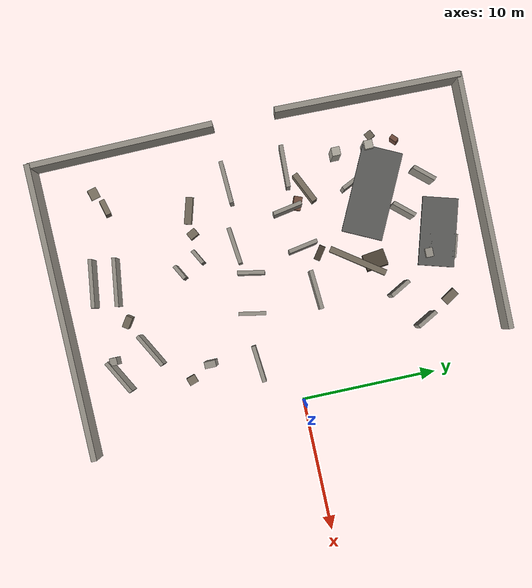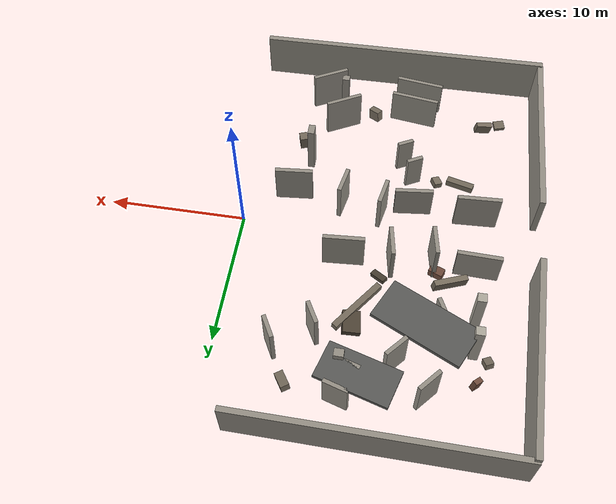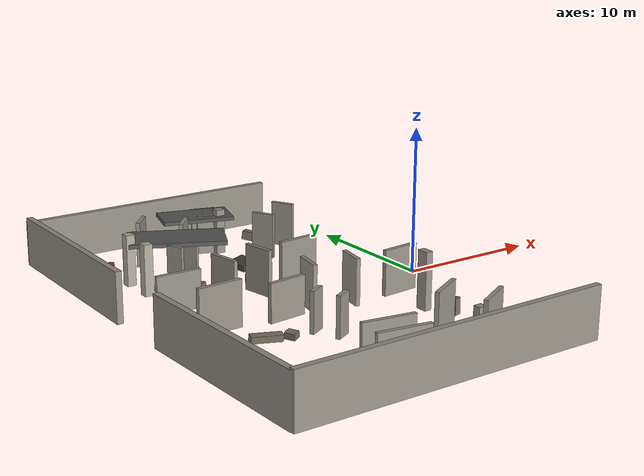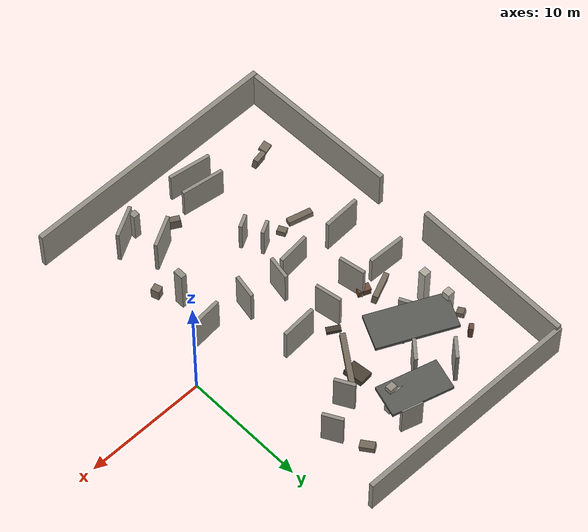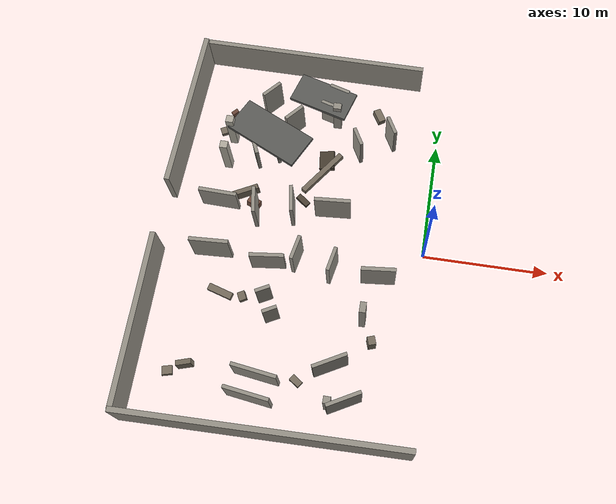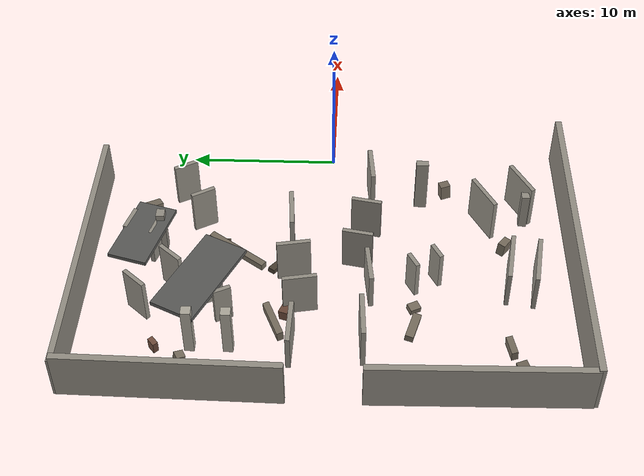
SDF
<sdf version="1.6">
 <model name="ruins_urban_01_base">
  <static>true</static>
  <link name="001_north_boundary_west">
   <pose>-11.50000 15.85000 1.55000 0.00000 0.00000 -0.01000</pose>
   <visual name="visual">
    <geometry><box><size>19.00000 0.38000 3.10000</size></box></geometry>
    <material>
     <ambient>0.580 0.560 0.520 1</ambient>
     <diffuse>0.580 0.560 0.520 1</diffuse>
     <specular>0.03 0.03 0.03 1</specular>
    </material>
   </visual>
   <collision name="collision">
    <geometry><box><size>19.00000 0.38000 3.10000</size></box></geometry>
    <surface>
     <contact><collide_bitmask>0x01</collide_bitmask></contact>
     <friction><ode><mu>1.0</mu><mu2>1.0</mu2></ode></friction>
    </surface>
   </collision>
  </link>
  <link name="003_south_boundary_west">
   <pose>-10.00000 -15.90000 1.75000 0.00000 0.00000 0.01200</pose>
   <visual name="visual">
    <geometry><box><size>22.00000 0.42000 3.50000</size></box></geometry>
    <material>
     <ambient>0.580 0.560 0.520 1</ambient>
     <diffuse>0.580 0.560 0.520 1</diffuse>
     <specular>0.03 0.03 0.03 1</specular>
    </material>
   </visual>
   <collision name="collision">
    <geometry><box><size>22.00000 0.42000 3.50000</size></box></geometry>
    <surface>
     <contact><collide_bitmask>0x01</collide_bitmask></contact>
     <friction><ode><mu>1.0</mu><mu2>1.0</mu2></ode></friction>
    </surface>
   </collision>
  </link>
  <link name="005_west_boundary_north">
   <pose>-20.95000 9.15000 1.70000 0.00000 0.00000 -0.02000</pose>
   <visual name="visual">
    <geometry><box><size>0.42000 13.70000 3.40000</size></box></geometry>
    <material>
     <ambient>0.580 0.560 0.520 1</ambient>
     <diffuse>0.580 0.560 0.520 1</diffuse>
     <specular>0.03 0.03 0.03 1</specular>
    </material>
   </visual>
   <collision name="collision">
    <geometry><box><size>0.42000 13.70000 3.40000</size></box></geometry>
    <surface>
     <contact><collide_bitmask>0x01</collide_bitmask></contact>
     <friction><ode><mu>1.0</mu><mu2>1.0</mu2></ode></friction>
    </surface>
   </collision>
  </link>
  <link name="006_west_boundary_south">
   <pose>-20.95000 -9.15000 1.70000 0.00000 0.00000 0.01500</pose>
   <visual name="visual">
    <geometry><box><size>0.42000 13.70000 3.40000</size></box></geometry>
    <material>
     <ambient>0.580 0.560 0.520 1</ambient>
     <diffuse>0.580 0.560 0.520 1</diffuse>
     <specular>0.03 0.03 0.03 1</specular>
    </material>
   </visual>
   <collision name="collision">
    <geometry><box><size>0.42000 13.70000 3.40000</size></box></geometry>
    <surface>
     <contact><collide_bitmask>0x01</collide_bitmask></contact>
     <friction><ode><mu>1.0</mu><mu2>1.0</mu2></ode></friction>
    </surface>
   </collision>
  </link>
  <link name="008_ground_corridor_g2_n1_left">
   <pose>-13.96680 1.73807 1.57500 0.00000 0.00000 1.74751</pose>
   <visual name="visual">
    <geometry><box><size>2.18859 0.28000 3.15000</size></box></geometry>
    <material>
     <ambient>0.580 0.560 0.520 1</ambient>
     <diffuse>0.580 0.560 0.520 1</diffuse>
     <specular>0.03 0.03 0.03 1</specular>
    </material>
   </visual>
   <collision name="collision">
    <geometry><box><size>2.18859 0.28000 3.15000</size></box></geometry>
    <surface>
     <contact><collide_bitmask>0x01</collide_bitmask></contact>
     <friction><ode><mu>1.0</mu><mu2>1.0</mu2></ode></friction>
    </surface>
   </collision>
  </link>
  <link name="009_ground_corridor_g2_n1_right">
   <pose>-11.03320 2.26193 1.57500 0.00000 0.00000 1.74751</pose>
   <visual name="visual">
    <geometry><box><size>2.18859 0.28000 3.15000</size></box></geometry>
    <material>
     <ambient>0.580 0.560 0.520 1</ambient>
     <diffuse>0.580 0.560 0.520 1</diffuse>
     <specular>0.03 0.03 0.03 1</specular>
    </material>
   </visual>
   <collision name="collision">
    <geometry><box><size>2.18859 0.28000 3.15000</size></box></geometry>
    <surface>
     <contact><collide_bitmask>0x01</collide_bitmask></contact>
     <friction><ode><mu>1.0</mu><mu2>1.0</mu2></ode></friction>
    </surface>
   </collision>
  </link>
  <link name="010_ground_corridor_n1_n2_left">
   <pose>-14.78097 6.52811 1.37500 0.00000 0.00000 2.01522</pose>
   <visual name="visual">
    <geometry><box><size>1.15188 0.28000 2.75000</size></box></geometry>
    <material>
     <ambient>0.580 0.560 0.520 1</ambient>
     <diffuse>0.580 0.560 0.520 1</diffuse>
     <specular>0.03 0.03 0.03 1</specular>
    </material>
   </visual>
   <collision name="collision">
    <geometry><box><size>1.15188 0.28000 2.75000</size></box></geometry>
    <surface>
     <contact><collide_bitmask>0x01</collide_bitmask></contact>
     <friction><ode><mu>1.0</mu><mu2>1.0</mu2></ode></friction>
    </surface>
   </collision>
  </link>
  <link name="011_ground_corridor_n1_n2_right">
   <pose>-13.21903 7.27189 1.37500 0.00000 0.00000 2.01522</pose>
   <visual name="visual">
    <geometry><box><size>1.15188 0.28000 2.75000</size></box></geometry>
    <material>
     <ambient>0.580 0.560 0.520 1</ambient>
     <diffuse>0.580 0.560 0.520 1</diffuse>
     <specular>0.03 0.03 0.03 1</specular>
    </material>
   </visual>
   <collision name="collision">
    <geometry><box><size>1.15188 0.28000 2.75000</size></box></geometry>
    <surface>
     <contact><collide_bitmask>0x01</collide_bitmask></contact>
     <friction><ode><mu>1.0</mu><mu2>1.0</mu2></ode></friction>
    </surface>
   </collision>
  </link>
  <link name="012_ground_corridor_n2_n3_left">
   <pose>-14.37134 11.98117 1.57500 0.00000 0.00000 0.85197</pose>
   <visual name="visual">
    <geometry><box><size>1.81507 0.28000 3.15000</size></box></geometry>
    <material>
     <ambient>0.580 0.560 0.520 1</ambient>
     <diffuse>0.580 0.560 0.520 1</diffuse>
     <specular>0.03 0.03 0.03 1</specular>
    </material>
   </visual>
   <collision name="collision">
    <geometry><box><size>1.81507 0.28000 3.15000</size></box></geometry>
    <surface>
     <contact><collide_bitmask>0x01</collide_bitmask></contact>
     <friction><ode><mu>1.0</mu><mu2>1.0</mu2></ode></friction>
    </surface>
   </collision>
  </link>
  <link name="013_ground_corridor_n2_n3_right">
   <pose>-12.12866 10.01883 1.57500 0.00000 0.00000 0.85197</pose>
   <visual name="visual">
    <geometry><box><size>1.81507 0.28000 3.15000</size></box></geometry>
    <material>
     <ambient>0.580 0.560 0.520 1</ambient>
     <diffuse>0.580 0.560 0.520 1</diffuse>
     <specular>0.03 0.03 0.03 1</specular>
    </material>
   </visual>
   <collision name="collision">
    <geometry><box><size>1.81507 0.28000 3.15000</size></box></geometry>
    <surface>
     <contact><collide_bitmask>0x01</collide_bitmask></contact>
     <friction><ode><mu>1.0</mu><mu2>1.0</mu2></ode></friction>
    </surface>
   </collision>
  </link>
  <link name="014_ground_corridor_n3_n4_left">
   <pose>-8.75144 13.07852 1.37500 0.00000 0.00000 -0.29146</pose>
   <visual name="visual">
    <geometry><box><size>1.72015 0.28000 2.75000</size></box></geometry>
    <material>
     <ambient>0.580 0.560 0.520 1</ambient>
     <diffuse>0.580 0.560 0.520 1</diffuse>
     <specular>0.03 0.03 0.03 1</specular>
    </material>
   </visual>
   <collision name="collision">
    <geometry><box><size>1.72015 0.28000 2.75000</size></box></geometry>
    <surface>
     <contact><collide_bitmask>0x01</collide_bitmask></contact>
     <friction><ode><mu>1.0</mu><mu2>1.0</mu2></ode></friction>
    </surface>
   </collision>
  </link>
  <link name="015_ground_corridor_n3_n4_right">
   <pose>-9.24856 11.42148 1.37500 0.00000 0.00000 -0.29146</pose>
   <visual name="visual">
    <geometry><box><size>1.72015 0.28000 2.75000</size></box></geometry>
    <material>
     <ambient>0.580 0.560 0.520 1</ambient>
     <diffuse>0.580 0.560 0.520 1</diffuse>
     <specular>0.03 0.03 0.03 1</specular>
    </material>
   </visual>
   <collision name="collision">
    <geometry><box><size>1.72015 0.28000 2.75000</size></box></geometry>
    <surface>
     <contact><collide_bitmask>0x01</collide_bitmask></contact>
     <friction><ode><mu>1.0</mu><mu2>1.0</mu2></ode></friction>
    </surface>
   </collision>
  </link>
  <link name="016_ground_corridor_n4_n5_left">
   <pose>-3.94751 9.97361 1.57500 0.00000 0.00000 -1.06370</pose>
   <visual name="visual">
    <geometry><box><size>1.64782 0.28000 3.15000</size></box></geometry>
    <material>
     <ambient>0.580 0.560 0.520 1</ambient>
     <diffuse>0.580 0.560 0.520 1</diffuse>
     <specular>0.03 0.03 0.03 1</specular>
    </material>
   </visual>
   <collision name="collision">
    <geometry><box><size>1.64782 0.28000 3.15000</size></box></geometry>
    <surface>
     <contact><collide_bitmask>0x01</collide_bitmask></contact>
     <friction><ode><mu>1.0</mu><mu2>1.0</mu2></ode></friction>
    </surface>
   </collision>
  </link>
  <link name="017_ground_corridor_n4_n5_right">
   <pose>-6.55249 8.52639 1.57500 0.00000 0.00000 -1.06370</pose>
   <visual name="visual">
    <geometry><box><size>1.64782 0.28000 3.15000</size></box></geometry>
    <material>
     <ambient>0.580 0.560 0.520 1</ambient>
     <diffuse>0.580 0.560 0.520 1</diffuse>
     <specular>0.03 0.03 0.03 1</specular>
    </material>
   </visual>
   <collision name="collision">
    <geometry><box><size>1.64782 0.28000 3.15000</size></box></geometry>
    <surface>
     <contact><collide_bitmask>0x01</collide_bitmask></contact>
     <friction><ode><mu>1.0</mu><mu2>1.0</mu2></ode></friction>
    </surface>
   </collision>
  </link>
  <link name="018_ground_corridor_g3_s1_left">
   <pose>-7.03491 -2.37131 1.57500 0.00000 0.00000 -1.75391</pose>
   <visual name="visual">
    <geometry><box><size>1.99181 0.28000 3.15000</size></box></geometry>
    <material>
     <ambient>0.580 0.560 0.520 1</ambient>
     <diffuse>0.580 0.560 0.520 1</diffuse>
     <specular>0.03 0.03 0.03 1</specular>
    </material>
   </visual>
   <collision name="collision">
    <geometry><box><size>1.99181 0.28000 3.15000</size></box></geometry>
    <surface>
     <contact><collide_bitmask>0x01</collide_bitmask></contact>
     <friction><ode><mu>1.0</mu><mu2>1.0</mu2></ode></friction>
    </surface>
   </collision>
  </link>
  <link name="019_ground_corridor_g3_s1_right">
   <pose>-9.96509 -1.82869 1.57500 0.00000 0.00000 -1.75391</pose>
   <visual name="visual">
    <geometry><box><size>1.99181 0.28000 3.15000</size></box></geometry>
    <material>
     <ambient>0.580 0.560 0.520 1</ambient>
     <diffuse>0.580 0.560 0.520 1</diffuse>
     <specular>0.03 0.03 0.03 1</specular>
    </material>
   </visual>
   <collision name="collision">
    <geometry><box><size>1.99181 0.28000 3.15000</size></box></geometry>
    <surface>
     <contact><collide_bitmask>0x01</collide_bitmask></contact>
     <friction><ode><mu>1.0</mu><mu2>1.0</mu2></ode></friction>
    </surface>
   </collision>
  </link>
  <link name="020_ground_corridor_s1_s2_left">
   <pose>-11.08900 -6.91112 1.37500 0.00000 0.00000 -2.64646</pose>
   <visual name="visual">
    <geometry><box><size>1.18243 0.28000 2.75000</size></box></geometry>
    <material>
     <ambient>0.580 0.560 0.520 1</ambient>
     <diffuse>0.580 0.560 0.520 1</diffuse>
     <specular>0.03 0.03 0.03 1</specular>
    </material>
   </visual>
   <collision name="collision">
    <geometry><box><size>1.18243 0.28000 2.75000</size></box></geometry>
    <surface>
     <contact><collide_bitmask>0x01</collide_bitmask></contact>
     <friction><ode><mu>1.0</mu><mu2>1.0</mu2></ode></friction>
    </surface>
   </collision>
  </link>
  <link name="021_ground_corridor_s1_s2_right">
   <pose>-11.91100 -5.38888 1.37500 0.00000 0.00000 -2.64646</pose>
   <visual name="visual">
    <geometry><box><size>1.18243 0.28000 2.75000</size></box></geometry>
    <material>
     <ambient>0.580 0.560 0.520 1</ambient>
     <diffuse>0.580 0.560 0.520 1</diffuse>
     <specular>0.03 0.03 0.03 1</specular>
    </material>
   </visual>
   <collision name="collision">
    <geometry><box><size>1.18243 0.28000 2.75000</size></box></geometry>
    <surface>
     <contact><collide_bitmask>0x01</collide_bitmask></contact>
     <friction><ode><mu>1.0</mu><mu2>1.0</mu2></ode></friction>
    </surface>
   </collision>
  </link>
  <link name="022_ground_corridor_s3_s4_left">
   <pose>-11.37767 -11.64369 1.37500 0.00000 0.00000 -0.14190</pose>
   <visual name="visual">
    <geometry><box><size>3.57107 0.28000 2.75000</size></box></geometry>
    <material>
     <ambient>0.580 0.560 0.520 1</ambient>
     <diffuse>0.580 0.560 0.520 1</diffuse>
     <specular>0.03 0.03 0.03 1</specular>
    </material>
   </visual>
   <collision name="collision">
    <geometry><box><size>3.57107 0.28000 2.75000</size></box></geometry>
    <surface>
     <contact><collide_bitmask>0x01</collide_bitmask></contact>
     <friction><ode><mu>1.0</mu><mu2>1.0</mu2></ode></friction>
    </surface>
   </collision>
  </link>
  <link name="023_ground_corridor_s3_s4_right">
   <pose>-11.62233 -13.35631 1.37500 0.00000 0.00000 -0.14190</pose>
   <visual name="visual">
    <geometry><box><size>3.57107 0.28000 2.75000</size></box></geometry>
    <material>
     <ambient>0.580 0.560 0.520 1</ambient>
     <diffuse>0.580 0.560 0.520 1</diffuse>
     <specular>0.03 0.03 0.03 1</specular>
    </material>
   </visual>
   <collision name="collision">
    <geometry><box><size>3.57107 0.28000 2.75000</size></box></geometry>
    <surface>
     <contact><collide_bitmask>0x01</collide_bitmask></contact>
     <friction><ode><mu>1.0</mu><mu2>1.0</mu2></ode></friction>
    </surface>
   </collision>
  </link>
  <link name="024_ground_corridor_s4_s5_left">
   <pose>-5.96349 -10.19194 1.57500 0.00000 0.00000 0.49935</pose>
   <visual name="visual">
    <geometry><box><size>2.76498 0.28000 3.15000</size></box></geometry>
    <material>
     <ambient>0.580 0.560 0.520 1</ambient>
     <diffuse>0.580 0.560 0.520 1</diffuse>
     <specular>0.03 0.03 0.03 1</specular>
    </material>
   </visual>
   <collision name="collision">
    <geometry><box><size>2.76498 0.28000 3.15000</size></box></geometry>
    <surface>
     <contact><collide_bitmask>0x01</collide_bitmask></contact>
     <friction><ode><mu>1.0</mu><mu2>1.0</mu2></ode></friction>
    </surface>
   </collision>
  </link>
  <link name="025_ground_corridor_s4_s5_right">
   <pose>-4.53651 -12.80806 1.57500 0.00000 0.00000 0.49935</pose>
   <visual name="visual">
    <geometry><box><size>2.76498 0.28000 3.15000</size></box></geometry>
    <material>
     <ambient>0.580 0.560 0.520 1</ambient>
     <diffuse>0.580 0.560 0.520 1</diffuse>
     <specular>0.03 0.03 0.03 1</specular>
    </material>
   </visual>
   <collision name="collision">
    <geometry><box><size>2.76498 0.28000 3.15000</size></box></geometry>
    <surface>
     <contact><collide_bitmask>0x01</collide_bitmask></contact>
     <friction><ode><mu>1.0</mu><mu2>1.0</mu2></ode></friction>
    </surface>
   </collision>
  </link>
  <link name="026_spine_broken_panel_00">
   <pose>-17.05000 2.20000 1.30000 0.00000 0.00000 -0.03225</pose>
   <visual name="visual">
    <geometry><box><size>3.10161 0.30000 2.60000</size></box></geometry>
    <material>
     <ambient>0.580 0.560 0.520 1</ambient>
     <diffuse>0.580 0.560 0.520 1</diffuse>
     <specular>0.03 0.03 0.03 1</specular>
    </material>
   </visual>
   <collision name="collision">
    <geometry><box><size>3.10161 0.30000 2.60000</size></box></geometry>
    <surface>
     <contact><collide_bitmask>0x01</collide_bitmask></contact>
     <friction><ode><mu>1.0</mu><mu2>1.0</mu2></ode></friction>
    </surface>
   </collision>
  </link>
  <link name="027_spine_broken_panel_02">
   <pose>-7.75000 2.55000 1.55000 0.00000 0.00000 0.06886</pose>
   <visual name="visual">
    <geometry><box><size>2.90689 0.30000 3.10000</size></box></geometry>
    <material>
     <ambient>0.580 0.560 0.520 1</ambient>
     <diffuse>0.580 0.560 0.520 1</diffuse>
     <specular>0.03 0.03 0.03 1</specular>
    </material>
   </visual>
   <collision name="collision">
    <geometry><box><size>2.90689 0.30000 3.10000</size></box></geometry>
    <surface>
     <contact><collide_bitmask>0x01</collide_bitmask></contact>
     <friction><ode><mu>1.0</mu><mu2>1.0</mu2></ode></friction>
    </surface>
   </collision>
  </link>
  <link name="032_spine_broken_panel_08">
   <pose>-16.75000 -2.22500 1.55000 0.00000 0.00000 0.04835</pose>
   <visual name="visual">
    <geometry><box><size>3.10363 0.30000 3.10000</size></box></geometry>
    <material>
     <ambient>0.580 0.560 0.520 1</ambient>
     <diffuse>0.580 0.560 0.520 1</diffuse>
     <specular>0.03 0.03 0.03 1</specular>
    </material>
   </visual>
   <collision name="collision">
    <geometry><box><size>3.10363 0.30000 3.10000</size></box></geometry>
    <surface>
     <contact><collide_bitmask>0x01</collide_bitmask></contact>
     <friction><ode><mu>1.0</mu><mu2>1.0</mu2></ode></friction>
    </surface>
   </collision>
  </link>
  <link name="033_spine_broken_panel_09">
   <pose>-12.15000 -2.60000 1.30000 0.00000 0.00000 0.11066</pose>
   <visual name="visual">
    <geometry><box><size>2.71662 0.30000 2.60000</size></box></geometry>
    <material>
     <ambient>0.580 0.560 0.520 1</ambient>
     <diffuse>0.580 0.560 0.520 1</diffuse>
     <specular>0.03 0.03 0.03 1</specular>
    </material>
   </visual>
   <collision name="collision">
    <geometry><box><size>2.71662 0.30000 2.60000</size></box></geometry>
    <surface>
     <contact><collide_bitmask>0x01</collide_bitmask></contact>
     <friction><ode><mu>1.0</mu><mu2>1.0</mu2></ode></friction>
    </surface>
   </collision>
  </link>
  <link name="034_spine_broken_panel_11">
   <pose>-3.35000 -2.67500 1.55000 0.00000 0.00000 0.09233</pose>
   <visual name="visual">
    <geometry><box><size>2.71155 0.30000 3.10000</size></box></geometry>
    <material>
     <ambient>0.580 0.560 0.520 1</ambient>
     <diffuse>0.580 0.560 0.520 1</diffuse>
     <specular>0.03 0.03 0.03 1</specular>
    </material>
   </visual>
   <collision name="collision">
    <geometry><box><size>2.71155 0.30000 3.10000</size></box></geometry>
    <surface>
     <contact><collide_bitmask>0x01</collide_bitmask></contact>
     <friction><ode><mu>1.0</mu><mu2>1.0</mu2></ode></friction>
    </surface>
   </collision>
  </link>
  <link name="038_utility_ceiling_01">
   <pose>-13.80000 8.00000 2.72000 0.00000 0.00000 -0.45000</pose>
   <visual name="visual">
    <geometry><box><size>6.50000 3.00000 0.28000</size></box></geometry>
    <material>
     <ambient>0.350 0.350 0.340 1</ambient>
     <diffuse>0.350 0.350 0.340 1</diffuse>
     <specular>0.03 0.03 0.03 1</specular>
    </material>
   </visual>
   <collision name="collision">
    <geometry><box><size>6.50000 3.00000 0.28000</size></box></geometry>
    <surface>
     <contact><collide_bitmask>0x01</collide_bitmask></contact>
     <friction><ode><mu>1.0</mu><mu2>1.0</mu2></ode></friction>
    </surface>
   </collision>
  </link>
  <link name="039_utility_ceiling_02">
   <pose>-10.00000 12.10000 2.62000 0.00000 0.00000 -0.28000</pose>
   <visual name="visual">
    <geometry><box><size>5.00000 2.60000 0.26000</size></box></geometry>
    <material>
     <ambient>0.350 0.350 0.340 1</ambient>
     <diffuse>0.350 0.350 0.340 1</diffuse>
     <specular>0.03 0.03 0.03 1</specular>
    </material>
   </visual>
   <collision name="collision">
    <geometry><box><size>5.00000 2.60000 0.26000</size></box></geometry>
    <surface>
     <contact><collide_bitmask>0x01</collide_bitmask></contact>
     <friction><ode><mu>1.0</mu><mu2>1.0</mu2></ode></friction>
    </surface>
   </collision>
  </link>
  <link name="040_fixed_column_00">
   <pose>-17.20000 6.00000 1.75000 0.00000 0.00000 0.00000</pose>
   <visual name="visual">
    <geometry><box><size>0.62000 0.62000 3.50000</size></box></geometry>
    <material>
     <ambient>0.680 0.660 0.610 1</ambient>
     <diffuse>0.680 0.660 0.610 1</diffuse>
     <specular>0.03 0.03 0.03 1</specular>
    </material>
   </visual>
   <collision name="collision">
    <geometry><box><size>0.62000 0.62000 3.50000</size></box></geometry>
    <surface>
     <contact><collide_bitmask>0x01</collide_bitmask></contact>
     <friction><ode><mu>1.0</mu><mu2>1.0</mu2></ode></friction>
    </surface>
   </collision>
  </link>
  <link name="041_fixed_column_01">
   <pose>-17.20000 8.40000 1.75000 0.00000 0.00000 0.00000</pose>
   <visual name="visual">
    <geometry><box><size>0.62000 0.62000 3.50000</size></box></geometry>
    <material>
     <ambient>0.680 0.660 0.610 1</ambient>
     <diffuse>0.680 0.660 0.610 1</diffuse>
     <specular>0.03 0.03 0.03 1</specular>
    </material>
   </visual>
   <collision name="collision">
    <geometry><box><size>0.62000 0.62000 3.50000</size></box></geometry>
    <surface>
     <contact><collide_bitmask>0x01</collide_bitmask></contact>
     <friction><ode><mu>1.0</mu><mu2>1.0</mu2></ode></friction>
    </surface>
   </collision>
  </link>
  <link name="054_base_random_column_00">
   <pose>-5.73317 -12.99629 1.33825 0.00000 0.00000 0.00000</pose>
   <visual name="visual">
    <geometry><box><size>0.55366 0.53266 2.67650</size></box></geometry>
    <material>
     <ambient>0.580 0.560 0.520 1</ambient>
     <diffuse>0.580 0.560 0.520 1</diffuse>
     <specular>0.03 0.03 0.03 1</specular>
    </material>
   </visual>
   <collision name="collision">
    <geometry><box><size>0.55366 0.53266 2.67650</size></box></geometry>
    <surface>
     <contact><collide_bitmask>0x01</collide_bitmask></contact>
     <friction><ode><mu>1.0</mu><mu2>1.0</mu2></ode></friction>
    </surface>
   </collision>
  </link>
  <link name="055_base_random_column_01">
   <pose>-8.65912 11.08855 1.59380 0.00000 0.00000 0.00000</pose>
   <visual name="visual">
    <geometry><box><size>0.65716 0.54913 3.18760</size></box></geometry>
    <material>
     <ambient>0.580 0.560 0.520 1</ambient>
     <diffuse>0.580 0.560 0.520 1</diffuse>
     <specular>0.03 0.03 0.03 1</specular>
    </material>
   </visual>
   <collision name="collision">
    <geometry><box><size>0.65716 0.54913 3.18760</size></box></geometry>
    <surface>
     <contact><collide_bitmask>0x01</collide_bitmask></contact>
     <friction><ode><mu>1.0</mu><mu2>1.0</mu2></ode></friction>
    </surface>
   </collision>
  </link>
  <link name="057_base_random_column_03">
   <pose>-4.09062 -6.09016 1.93482 0.00000 0.00000 0.00000</pose>
   <visual name="visual">
    <geometry><box><size>0.48531 0.82253 3.86965</size></box></geometry>
    <material>
     <ambient>0.580 0.560 0.520 1</ambient>
     <diffuse>0.580 0.560 0.520 1</diffuse>
     <specular>0.03 0.03 0.03 1</specular>
    </material>
   </visual>
   <collision name="collision">
    <geometry><box><size>0.48531 0.82253 3.86965</size></box></geometry>
    <surface>
     <contact><collide_bitmask>0x01</collide_bitmask></contact>
     <friction><ode><mu>1.0</mu><mu2>1.0</mu2></ode></friction>
    </surface>
   </collision>
  </link>
  <link name="062_base_rubble_002">
   <pose>-3.16065 -7.79097 0.54282 0.04106 0.05884 1.89598</pose>
   <visual name="visual">
    <geometry><box><size>0.68196 0.59113 1.08564</size></box></geometry>
    <material>
     <ambient>0.460 0.420 0.360 1</ambient>
     <diffuse>0.460 0.420 0.360 1</diffuse>
     <specular>0.03 0.03 0.03 1</specular>
    </material>
   </visual>
   <collision name="collision">
    <geometry><box><size>0.68196 0.59113 1.08564</size></box></geometry>
    <surface>
     <contact><collide_bitmask>0x01</collide_bitmask></contact>
     <friction><ode><mu>1.0</mu><mu2>1.0</mu2></ode></friction>
    </surface>
   </collision>
  </link>
  <link name="063_base_rubble_003">
   <pose>-5.20781 12.27135 0.30559 0.07202 -0.10332 2.14174</pose>
   <visual name="visual">
    <geometry><box><size>1.14079 0.60545 0.61118</size></box></geometry>
    <material>
     <ambient>0.460 0.420 0.360 1</ambient>
     <diffuse>0.460 0.420 0.360 1</diffuse>
     <specular>0.03 0.03 0.03 1</specular>
    </material>
   </visual>
   <collision name="collision">
    <geometry><box><size>1.14079 0.60545 0.61118</size></box></geometry>
    <surface>
     <contact><collide_bitmask>0x01</collide_bitmask></contact>
     <friction><ode><mu>1.0</mu><mu2>1.0</mu2></ode></friction>
    </surface>
   </collision>
  </link>
  <link name="064_base_rubble_004">
   <pose>-14.35665 2.58318 0.34187 0.00596 0.09389 1.19255</pose>
   <visual name="visual">
    <geometry><box><size>0.61264 1.02405 0.68374</size></box></geometry>
    <material>
     <ambient>0.430 0.290 0.230 1</ambient>
     <diffuse>0.430 0.290 0.230 1</diffuse>
     <specular>0.03 0.03 0.03 1</specular>
    </material>
   </visual>
   <collision name="collision">
    <geometry><box><size>0.61264 1.02405 0.68374</size></box></geometry>
    <surface>
     <contact><collide_bitmask>0x01</collide_bitmask></contact>
     <friction><ode><mu>1.0</mu><mu2>1.0</mu2></ode></friction>
    </surface>
   </collision>
  </link>
  <link name="065_base_rubble_005">
   <pose>-13.75689 -5.48803 0.21482 -0.12590 -0.01291 2.04278</pose>
   <visual name="visual">
    <geometry><box><size>0.72122 0.59020 0.42964</size></box></geometry>
    <material>
     <ambient>0.460 0.420 0.360 1</ambient>
     <diffuse>0.460 0.420 0.360 1</diffuse>
     <specular>0.03 0.03 0.03 1</specular>
    </material>
   </visual>
   <collision name="collision">
    <geometry><box><size>0.72122 0.59020 0.42964</size></box></geometry>
    <surface>
     <contact><collide_bitmask>0x01</collide_bitmask></contact>
     <friction><ode><mu>1.0</mu><mu2>1.0</mu2></ode></friction>
    </surface>
   </collision>
  </link>
  <link name="069_base_rubble_009">
   <pose>-18.19326 8.93807 0.25219 0.17750 -0.01705 0.45858</pose>
   <visual name="visual">
    <geometry><box><size>0.57383 0.57875 0.50438</size></box></geometry>
    <material>
     <ambient>0.460 0.420 0.360 1</ambient>
     <diffuse>0.460 0.420 0.360 1</diffuse>
     <specular>0.03 0.03 0.03 1</specular>
    </material>
   </visual>
   <collision name="collision">
    <geometry><box><size>0.57383 0.57875 0.50438</size></box></geometry>
    <surface>
     <contact><collide_bitmask>0x01</collide_bitmask></contact>
     <friction><ode><mu>1.0</mu><mu2>1.0</mu2></ode></friction>
    </surface>
   </collision>
  </link>
  <link name="071_base_rubble_011">
   <pose>-8.38826 -11.54913 0.43450 -0.04643 -0.12408 2.54488</pose>
   <visual name="visual">
    <geometry><box><size>0.89972 0.51508 0.86900</size></box></geometry>
    <material>
     <ambient>0.460 0.420 0.360 1</ambient>
     <diffuse>0.460 0.420 0.360 1</diffuse>
     <specular>0.03 0.03 0.03 1</specular>
    </material>
   </visual>
   <collision name="collision">
    <geometry><box><size>0.89972 0.51508 0.86900</size></box></geometry>
    <surface>
     <contact><collide_bitmask>0x01</collide_bitmask></contact>
     <friction><ode><mu>1.0</mu><mu2>1.0</mu2></ode></friction>
    </surface>
   </collision>
  </link>
  <link name="072_base_rubble_012">
   <pose>-17.47175 10.60928 0.46590 -0.13339 0.06822 2.30324</pose>
   <visual name="visual">
    <geometry><box><size>0.35651 0.58048 0.93179</size></box></geometry>
    <material>
     <ambient>0.430 0.290 0.230 1</ambient>
     <diffuse>0.430 0.290 0.230 1</diffuse>
     <specular>0.03 0.03 0.03 1</specular>
    </material>
   </visual>
   <collision name="collision">
    <geometry><box><size>0.35651 0.58048 0.93179</size></box></geometry>
    <surface>
     <contact><collide_bitmask>0x01</collide_bitmask></contact>
     <friction><ode><mu>1.0</mu><mu2>1.0</mu2></ode></friction>
    </surface>
   </collision>
  </link>
  <link name="074_base_rubble_014">
   <pose>-9.00232 7.39009 0.22118 -0.16347 0.02564 1.69424</pose>
   <visual name="visual">
    <geometry><box><size>1.64263 1.23648 0.44236</size></box></geometry>
    <material>
     <ambient>0.290 0.250 0.200 1</ambient>
     <diffuse>0.290 0.250 0.200 1</diffuse>
     <specular>0.03 0.03 0.03 1</specular>
    </material>
   </visual>
   <collision name="collision">
    <geometry><box><size>1.64263 1.23648 0.44236</size></box></geometry>
    <surface>
     <contact><collide_bitmask>0x01</collide_bitmask></contact>
     <friction><ode><mu>1.0</mu><mu2>1.0</mu2></ode></friction>
    </surface>
   </collision>
  </link>
  <link name="077_base_rubble_017">
   <pose>-16.98840 -11.44090 0.41576 -0.11942 -0.13869 0.25775</pose>
   <visual name="visual">
    <geometry><box><size>1.20735 0.41840 0.83152</size></box></geometry>
    <material>
     <ambient>0.460 0.420 0.360 1</ambient>
     <diffuse>0.460 0.420 0.360 1</diffuse>
     <specular>0.03 0.03 0.03 1</specular>
    </material>
   </visual>
   <collision name="collision">
    <geometry><box><size>1.20735 0.41840 0.83152</size></box></geometry>
    <surface>
     <contact><collide_bitmask>0x01</collide_bitmask></contact>
     <friction><ode><mu>1.0</mu><mu2>1.0</mu2></ode></friction>
    </surface>
   </collision>
  </link>
  <link name="081_base_rubble_021">
   <pose>-10.41380 3.46784 0.15915 0.12396 -0.00998 0.95837</pose>
   <visual name="visual">
    <geometry><box><size>0.47565 1.13349 0.31830</size></box></geometry>
    <material>
     <ambient>0.290 0.250 0.200 1</ambient>
     <diffuse>0.290 0.250 0.200 1</diffuse>
     <specular>0.03 0.03 0.03 1</specular>
    </material>
   </visual>
   <collision name="collision">
    <geometry><box><size>0.47565 1.13349 0.31830</size></box></geometry>
    <surface>
     <contact><collide_bitmask>0x01</collide_bitmask></contact>
     <friction><ode><mu>1.0</mu><mu2>1.0</mu2></ode></friction>
    </surface>
   </collision>
  </link>
  <link name="085_base_rubble_025">
   <pose>-18.26151 -12.10582 0.13904 0.04909 0.16255 1.84438</pose>
   <visual name="visual">
    <geometry><box><size>0.69702 0.80512 0.27808</size></box></geometry>
    <material>
     <ambient>0.460 0.420 0.360 1</ambient>
     <diffuse>0.460 0.420 0.360 1</diffuse>
     <specular>0.03 0.03 0.03 1</specular>
    </material>
   </visual>
   <collision name="collision">
    <geometry><box><size>0.69702 0.80512 0.27808</size></box></geometry>
    <surface>
     <contact><collide_bitmask>0x01</collide_bitmask></contact>
     <friction><ode><mu>1.0</mu><mu2>1.0</mu2></ode></friction>
    </surface>
   </collision>
  </link>
  <link name="089_base_collapsed_wall_01">
   <pose>-15.33027 3.35950 0.44253 -0.09587 -0.11134 0.43019</pose>
   <visual name="visual">
    <geometry><box><size>2.47987 0.42620 0.80103</size></box></geometry>
    <material>
     <ambient>0.460 0.420 0.360 1</ambient>
     <diffuse>0.460 0.420 0.360 1</diffuse>
     <specular>0.03 0.03 0.03 1</specular>
    </material>
   </visual>
   <collision name="collision">
    <geometry><box><size>2.47987 0.42620 0.80103</size></box></geometry>
    <surface>
     <contact><collide_bitmask>0x01</collide_bitmask></contact>
     <friction><ode><mu>1.0</mu><mu2>1.0</mu2></ode></friction>
    </surface>
   </collision>
  </link>
  <link name="090_base_collapsed_wall_02">
   <pose>-9.21883 6.12506 0.33463 -0.01017 -0.02101 0.95382</pose>
   <visual name="visual">
    <geometry><box><size>4.50780 0.44800 0.45184</size></box></geometry>
    <material>
     <ambient>0.460 0.420 0.360 1</ambient>
     <diffuse>0.460 0.420 0.360 1</diffuse>
     <specular>0.03 0.03 0.03 1</specular>
    </material>
   </visual>
   <collision name="collision">
    <geometry><box><size>4.50780 0.44800 0.45184</size></box></geometry>
    <surface>
     <contact><collide_bitmask>0x01</collide_bitmask></contact>
     <friction><ode><mu>1.0</mu><mu2>1.0</mu2></ode></friction>
    </surface>
   </collision>
  </link>
  <link name="094_base_collapsed_wall_06">
   <pose>-15.51333 -5.40140 0.39573 -0.10299 -0.04223 2.85897</pose>
   <visual name="visual">
    <geometry><box><size>2.01914 0.54026 0.44094</size></box></geometry>
    <material>
     <ambient>0.460 0.420 0.360 1</ambient>
     <diffuse>0.460 0.420 0.360 1</diffuse>
     <specular>0.03 0.03 0.03 1</specular>
    </material>
   </visual>
   <collision name="collision">
    <geometry><box><size>2.01914 0.54026 0.44094</size></box></geometry>
    <surface>
     <contact><collide_bitmask>0x01</collide_bitmask></contact>
     <friction><ode><mu>1.0</mu><mu2>1.0</mu2></ode></friction>
    </surface>
   </collision>
  </link>
 </model>
</sdf>
